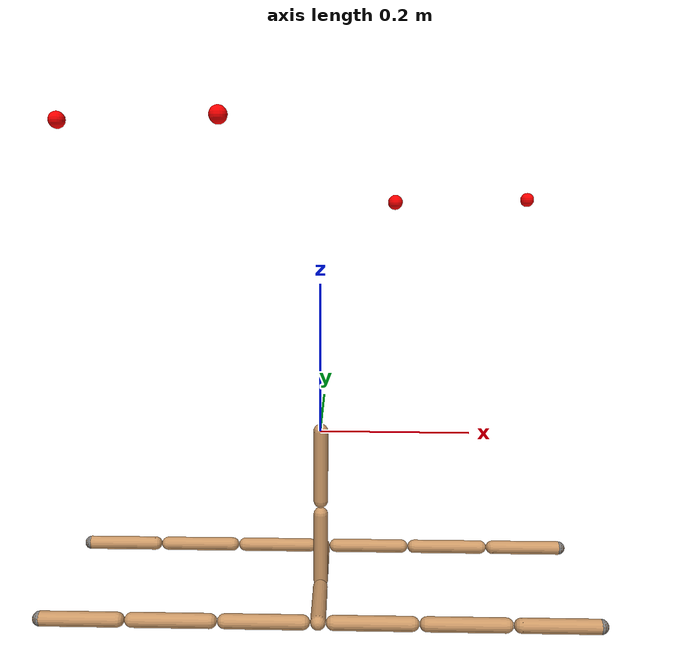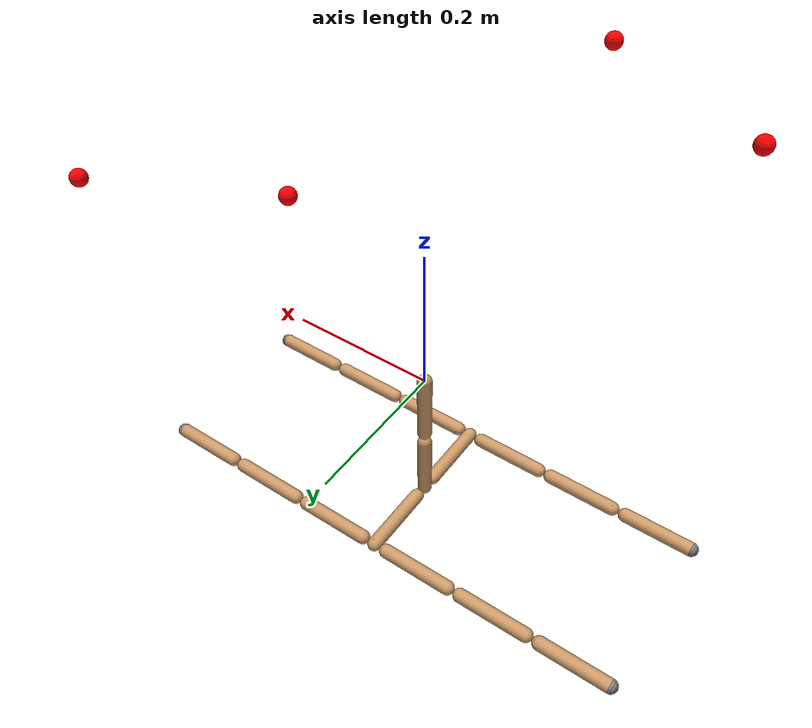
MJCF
<mujoco model="double_y">
  <default>
    <geom rgba=".8 .6 .4 1"  solref="0.02 1"/>
  </default>
  <option gravity="0 0 0" integrator="RK4"/>

  <asset>
    <texture type="skybox" builtin="gradient" rgb1="1 1 1" rgb2=".6 .8 1" width="256" height="256"/>
  </asset>

  <worldbody>
    <light pos="0 1 1" dir="0 -1 -1" diffuse="1 1 1"/>
    <body pos="0 0 0">
      <joint type="hinge" name="jointA0" axis="0 1 0" range="-120 120" limited="false"/>
      <geom type="capsule" size="0.01" fromto="0 0 0  0 0 -0.1"/>
      <body pos="0 0 -0.12">
        <joint type="hinge" name="jointA1" axis="1 0 0" range="-120 120" limited="false"/>
        <geom type="capsule" size="0.01" fromto="0 0 0  0 0 -0.1"/>
        <body pos="0 0.02 -0.1">
          <joint type="hinge" name="jointB" axis="0 0 1" range="-120 120" limited="true"/>
          <geom type="capsule" size="0.01" fromto="0 0 0  0 0.1 0"/>
          <body pos="0.02 0.1 0">
            <joint type="hinge" name="jointBA0" axis="0 0 1" range="-120 120" limited="true"/>
            <geom type="capsule" size="0.01" fromto="0 0 0  0.1 0 0"/>
            <body pos="0.12 0 0">
              <joint type="hinge" name="jointBA1" axis="0 1 0" range="-120 120" limited="true"/>
              <geom type="capsule" size="0.01" fromto="0 0 0  0.1 0 0"/>
              <body pos="0.12 0 0">
                <joint type="hinge" name="jnt_end0" axis="0 0 1" range="-120 120" limited="true"/>
                <geom type="capsule" size="0.01" fromto="0 0 0  0.1 0 0"/>
                <body pos="0.1 0 0"><site name="end0" type="sphere" size="0.01"/></body>
              </body>
            </body>
          </body>
          <body pos="-0.02 0.1 0">
            <joint type="hinge" name="jointBB0" axis="0 0 1" range="-120 120" limited="true"/>
            <geom type="capsule" size="0.01" fromto="0 0 0  -0.1 0 0"/>
            <body pos="-0.12 0 0">
              <joint type="hinge" name="jointBB1" axis="0 1 0" range="-120 120" limited="true"/>
              <geom type="capsule" size="0.01" fromto="0 0 0  -0.1 0 0"/>
              <body pos="-0.12 0 0">
                <joint type="hinge" name="jnt_end1" axis="0 0 1" range="-120 120" limited="true"/>
                <geom type="capsule" size="0.01" fromto="0 0 0  -0.1 0 0"/>
                <body pos="-0.1 0 0"><site name="end1" type="sphere" size="0.01"/></body>
              </body>
            </body>
          </body>
        </body>
        <body pos="0 -0.02 -0.1">
          <joint type="hinge" name="jointC" axis="0 0 1" range="-120 120" limited="true"/>
          <geom type="capsule" size="0.01" fromto="0 0 0  0 -0.1 0"/>
          <body pos="0.02 -0.1 0">
            <joint type="hinge" name="jointCA0" axis="0 0 1" range="-120 120" limited="true"/>
            <geom type="capsule" size="0.01" fromto="0 0 0  0.1 0 0"/>
            <body pos="0.12 0 0">
              <joint type="hinge" name="jointCA1" axis="0 1 0" range="-120 120" limited="true"/>
              <geom type="capsule" size="0.01" fromto="0 0 0  0.1 0 0"/>
              <body pos="0.12 0 0">
                <joint type="hinge" name="jnt_end2" axis="0 0 1" range="-120 120" limited="true"/>
                <geom type="capsule" size="0.01" fromto="0 0 0  0.1 0 0"/>
                <body pos="0.1 0 0"><site name="end2" type="sphere" size="0.01"/></body>
              </body>
            </body>
          </body>
          <body pos="-0.02 -0.1 0">
            <joint type="hinge" name="jointCB0" axis="0 0 1" range="-120 120" limited="true"/>
            <geom type="capsule" size="0.01" fromto="0 0 0  -0.1 0 0"/>
            <body pos="-0.12 0 0">
              <joint type="hinge" name="jointCB1" axis="0 1 0" range="-120 120" limited="true"/>
              <geom type="capsule" size="0.01" fromto="0 0 0  -0.1 0 0"/>
              <body pos="-0.12 0 0">
                <joint type="hinge" name="jnt_end3" axis="0 0 1" range="-120 120" limited="true"/>
                <geom type="capsule" size="0.01" fromto="0 0 0  -0.1 0 0"/>
                <body pos="-0.1 0 0"><site name="end3" type="sphere" size="0.01"/></body>
              </body>
            </body>
          </body>
        </body>
      </body>
    </body>
  </worldbody>

  <worldbody>
    <body pos="0.1 0.1 0.3">
      <joint type="free" name="t0"/>
      <geom type="sphere" size="0.01" rgba="1 0 0 1" name="target0" contype="0" conaffinity="2"/>
    </body>
  </worldbody>

  <worldbody>
    <body pos="0.3 0.2 0.3">
      <joint type="free" name="t1"/>
      <geom type="sphere" size="0.01" rgba="1 0 0 1" name="target1" contype="0" conaffinity="2"/>
    </body>
  </worldbody>

    <worldbody>
    <body pos="-0.1 -0.2 0.4">
      <joint type="free" name="t3"/>
      <geom type="sphere" size="0.01" rgba="1 0 0 1" name="target3" contype="0" conaffinity="2"/>
    </body>
  </worldbody>

  <worldbody>
    <body pos="-0.3 -0.1 0.4">
      <joint type="free" name="t2"/>
      <geom type="sphere" size="0.01" rgba="1 0 0 1" name="target2" contype="0" conaffinity="2"/>
    </body>
  </worldbody>

  <actuator>
    <motor name="jointA0act" joint="jointA0"/>
    <motor name="jointA1act" joint="jointA1"/>
    <motor name="jointBact" joint="jointB"/>
    <motor name="jointCact" joint="jointC"/>
    <motor name="jointBA0act" joint="jointBA0"/>
    <motor name="jointBA1act" joint="jointBA1"/>
    <motor name="jnt_end0act" joint="jnt_end0"/>
    <motor name="jointBB0act" joint="jointBB0"/>
    <motor name="jointBB1act" joint="jointBB1"/>
    <motor name="jnt_end1act" joint="jnt_end1"/>
    <motor name="jointCA0act" joint="jointCA0"/>
    <motor name="jointCA1act" joint="jointCA1"/>
    <motor name="jnt_end2act" joint="jnt_end2"/>
    <motor name="jointCB0act" joint="jointCB0"/>
    <motor name="jointCB1act" joint="jointCB1"/>
    <motor name="jnt_end3act" joint="jnt_end3"/>
    <velocity name="t0v" joint="t0" gear="0 1 0 0 0 0"/>
    <velocity name="t1v" joint="t1" gear="0 1 0 0 0 0"/>
    <velocity name="t2v" joint="t2" gear="1 0 0 0 0 0"/>
    <velocity name="t3v" joint="t3" gear="1 0 0 0 0 0"/>
  </actuator>

</mujoco>
